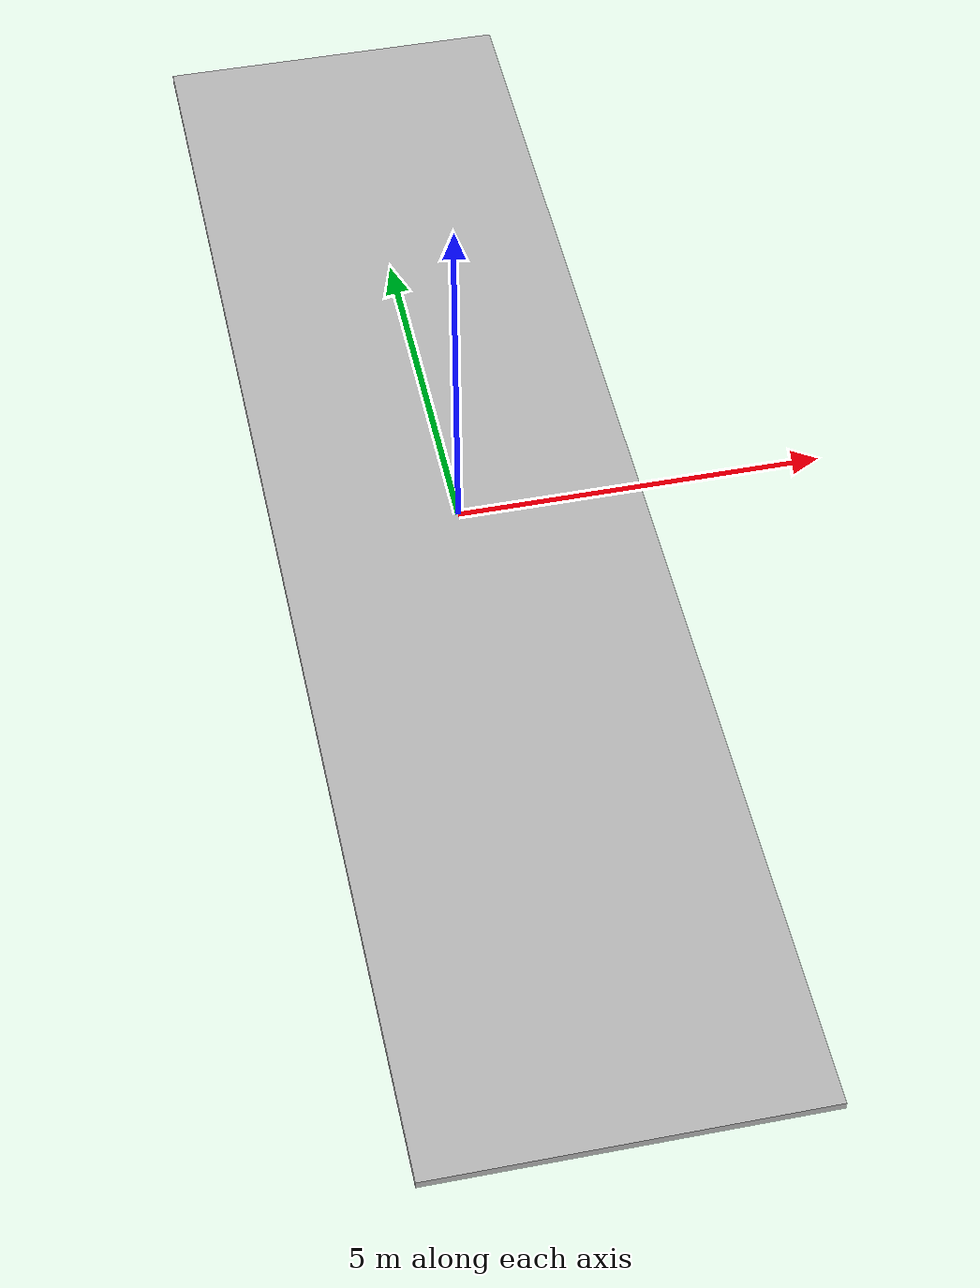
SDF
<?xml version="1.0" ?>
<sdf version="1.4">
  <model name="outdoor_plane">
    <static>true</static>
    <link name="link">
      <collision name="collision">
        <geometry>
          <box>
            <size>5 20 .1</size>
          </box>
        </geometry>
      </collision>
      <visual name="visual">
        <cast_shadows>false</cast_shadows>
        <geometry>
          <box>
            <size>5 20 .1</size>
          </box>
        </geometry>
        <material>
          <script>
            <uri>model://outdoor_plane/materials/scripts</uri>
            <uri>model://outdoor_plane/materials/textures</uri>
            <name>outds/Image</name>
          </script>
        </material>
      </visual>
    </link>
  </model>
</sdf>
